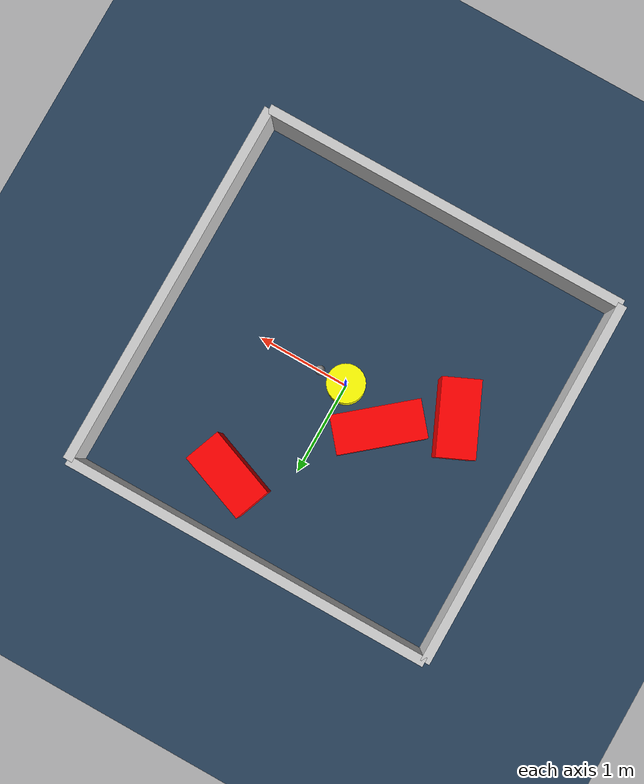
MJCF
<?xml version="1.0" ?>
<mujoco model="generated_environment">
  <option timestep="0.01" integrator="RK4" cone="elliptic"/>
  <default>
    <geom density="1"/>
  </default>
  <asset>
    <texture builtin="gradient" height="3072" rgb1="0.3 0.5 0.7" rgb2="0 0 0" type="skybox" width="512"/>
    <texture builtin="checker" height="300" mark="edge" markrgb="0.8 0.8 0.8" name="groundplane" rgb1="0.2 0.3 0.4" rgb2="0.1 0.2 0.3" type="2d" width="300"/>
    <material name="groundplane" reflectance="0.2" texrepeat="5 5" texture="groundplane" texuniform="true"/>
    <material name="robot" rgba="0.0 1.0 0.0 1"/>
  </asset>
  <worldbody>
    <light dir="0 0 -1" directional="true" pos="0 0 1.5"/>
    <geom condim="4" friction="1.0 0.005 0.001" material="groundplane" name="floor" size="0 0 0.05" type="plane"/>
    <body name="walls">
      <geom name="wall_1" condim="4" pos="-2.0 0.0 0.3" rgba="0.800000011920929 0.800000011920929 0.800000011920929 1.0" size="0.05 2.0 0.3" type="box"/>
      <geom name="wall_2" condim="4" pos="2.0 0.0 0.3" rgba="0.800000011920929 0.800000011920929 0.800000011920929 1.0" size="0.05 2.0 0.3" type="box"/>
      <geom name="wall_3" condim="4" pos="0.0 -2.0 0.3" rgba="0.800000011920929 0.800000011920929 0.800000011920929 1.0" size="2.0 0.05 0.3" type="box"/>
      <geom name="wall_4" condim="4" pos="0.0 2.0 0.3" rgba="0.800000011920929 0.800000011920929 0.800000011920929 1.0" size="2.0 0.05 0.3" type="box"/>
    </body>
    <body name="robot">
      <joint name="joint_x" type="slide" pos="0 0 0" axis="1 0 0"/>
      <joint name="joint_y" type="slide" pos="0 0 0" axis="0 1 0"/>
      <geom name="robot" type="sphere" pos="0.3 0.0 0.2" size="0.05" mass="5." friction="1.0 0.005 0.0001" condim="4" rgba="0.5 0.5 0.5 1.0"/>
      <site name="sensor_ball"/>
    </body>
    <body name="obstacle_movable_1">
      <geom name="obstacle_movable_1" condim="4" pos="0.0 0.0 0.2" euler="0 0 0.0" friction="1.0 0.005 0.001" rgba="1.0 1.0 0.0 1.0" size="0.2 0.2 0.0" type="cylinder" mass="0.1"/>
      <joint type="free"/>
    </body>
    <body name="obstacle_2_static">
      <geom name="obstacle_2_static" condim="4" pos="-0.4948746215802797 0.22380051386804856 0.3" euler="0 0 39.77873184777255" friction="1.0 0.005 0.001" rgba="1 0 0 1" size="0.4580127347986047 0.2 0.3" type="box"/>
    </body>
    <body name="obstacle_3_static">
      <geom name="obstacle_3_static" condim="4" pos="-1.137844136675176 -0.2340949084342152 0.3" euler="0 0 294.18003086440115" friction="1.0 0.005 0.001" rgba="1 0 0 1" size="0.39867421734581165 0.2 0.3" type="box"/>
    </body>
    <body name="obstacle_4_static">
      <geom name="obstacle_4_static" condim="4" pos="0.568748778576821 1.3644241344356562 0.3" euler="0 0 159.27965847217516" friction="1.0 0.005 0.001" rgba="1 0 0 1" size="0.3853411313166423 0.2 0.3" type="box"/>
    </body>
  </worldbody>
  <actuator>
    <motor name="actuator_x" joint="joint_x" gear="1" ctrlrange="-1 1"/>
    <motor name="actuator_y" joint="joint_y" gear="1" ctrlrange="-1 1"/>
  </actuator>
</mujoco>
